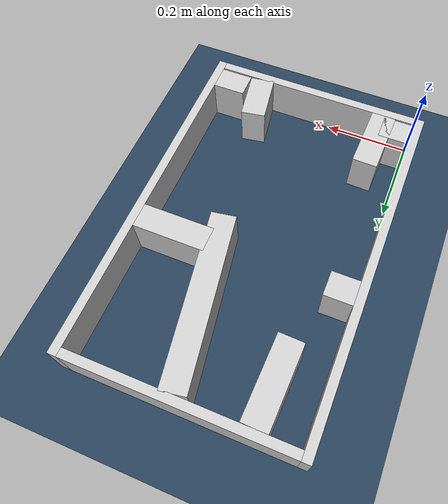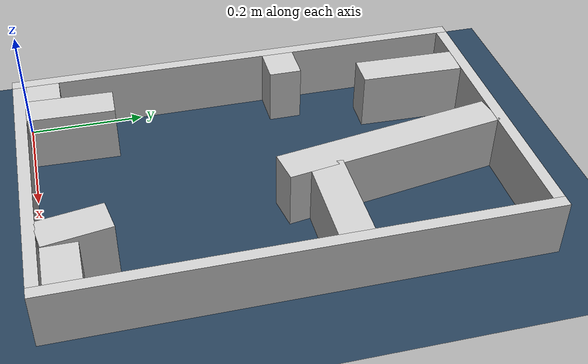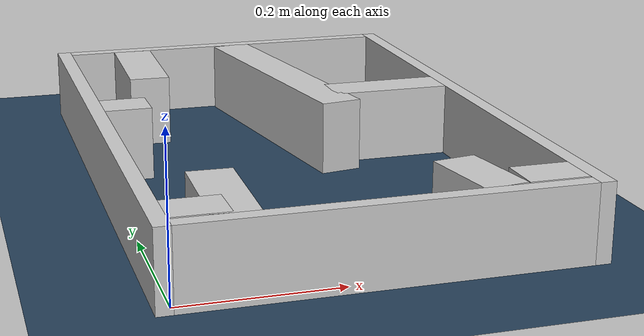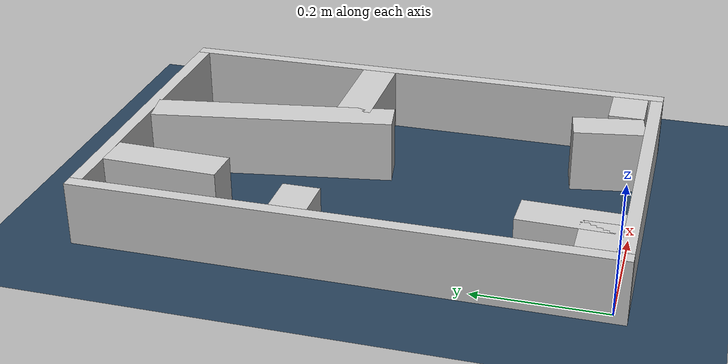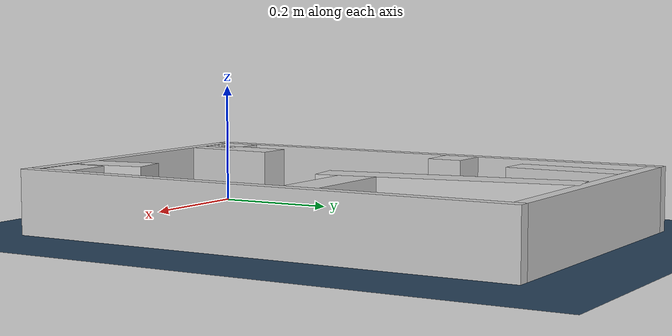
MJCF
<?xml version="1.0" ?>
<mujoco model="generated_real_template">
  <compiler angle="degree"/>
  <option timestep="0.002" integrator="implicitfast" iterations="100" cone="elliptic"/>
  <default>
    <geom density="1"/>
  </default>
  <asset>
    <texture builtin="gradient" height="3072" rgb1="0.3 0.5 0.7" rgb2="0 0 0" type="skybox" width="512"/>
    <texture builtin="checker" height="300" mark="edge" markrgb="0.8 0.8 0.8" name="groundplane" rgb1="0.2 0.3 0.4" rgb2="0.1 0.2 0.3" type="2d" width="300"/>
    <material name="groundplane" reflectance="0.2" texrepeat="5 5" texture="groundplane" texuniform="true"/>
  </asset>
  <worldbody>
    <light dir="0 0 -1" directional="true" pos="0 0 1.5"/>
    <geom name="floor" type="plane" condim="4" friction="0.5 0.005 0.001" material="groundplane" size="0 0 0.05"/>
    <body name="walls">
      <geom name="wall_boundary_left" type="box" condim="4" friction="1.0 0.005 0.0001" rgba="0.8 0.8 0.8 1" pos="-0.010000 0.387500 0.050000" euler="0 0 0.000000" size="0.010000 0.407500 0.050000"/>
      <geom name="wall_boundary_right" type="box" condim="4" friction="1.0 0.005 0.0001" rgba="0.8 0.8 0.8 1" pos="0.500000 0.387500 0.050000" euler="0 0 0.000000" size="0.010000 0.407500 0.050000"/>
      <geom name="wall_boundary_bottom" type="box" condim="4" friction="1.0 0.005 0.0001" rgba="0.8 0.8 0.8 1" pos="0.245000 -0.010000 0.050000" euler="0 0 0.000000" size="0.245000 0.010000 0.050000"/>
      <geom name="wall_boundary_top" type="box" condim="4" friction="1.0 0.005 0.0001" rgba="0.8 0.8 0.8 1" pos="0.245000 0.785000 0.050000" euler="0 0 0.000000" size="0.245000 0.010000 0.050000"/>
      <geom name="wall_inner_1_1" type="box" condim="4" friction="1.0 0.005 0.0001" rgba="0.8 0.8 0.8 1" pos="0.035569 0.032207 0.050000" euler="0 0 0.000000" size="0.035569 0.028500 0.050000"/>
      <geom name="wall_inner_1_2" type="box" condim="4" friction="1.0 0.005 0.0001" rgba="0.8 0.8 0.8 1" pos="0.452181 0.032207 0.050000" euler="0 0 0.000000" size="0.037819 0.028500 0.050000"/>
      <geom name="wall_inner_2_1" type="box" condim="4" friction="1.0 0.005 0.0001" rgba="0.8 0.8 0.8 1" pos="0.031840 0.460843 0.050000" euler="0 0 0.000000" size="0.031840 0.028500 0.050000"/>
      <geom name="wall_inner_2_2" type="box" condim="4" friction="1.0 0.005 0.0001" rgba="0.8 0.8 0.8 1" pos="0.407927 0.460843 0.050000" euler="0 0 0.000000" size="0.082073 0.028500 0.050000"/>
      <geom name="wall_inner_3_1" type="box" condim="4" friction="1.0 0.005 0.0001" rgba="0.8 0.8 0.8 1" pos="0.092874 0.684358 0.050000" euler="0 0 -91.603856" size="0.090678 0.028500 0.050000"/>
      <geom name="wall_inner_3_2" type="box" condim="4" friction="1.0 0.005 0.0001" rgba="0.8 0.8 0.8 1" pos="0.075801 0.074634 0.050000" euler="0 0 -91.603856" size="0.074663 0.028500 0.050000"/>
      <geom name="wall_inner_4_1" type="box" condim="4" friction="1.0 0.005 0.0001" rgba="0.8 0.8 0.8 1" pos="0.288257 0.583449 0.050000" euler="0 0 -80.541552" size="0.194191 0.028500 0.050000"/>
      <geom name="wall_inner_4_2" type="box" condim="4" friction="1.0 0.005 0.0001" rgba="0.8 0.8 0.8 1" pos="0.376202 0.055557 0.050000" euler="0 0 -80.541552" size="0.056323 0.028500 0.050000"/>
    </body>
  </worldbody>
</mujoco>
